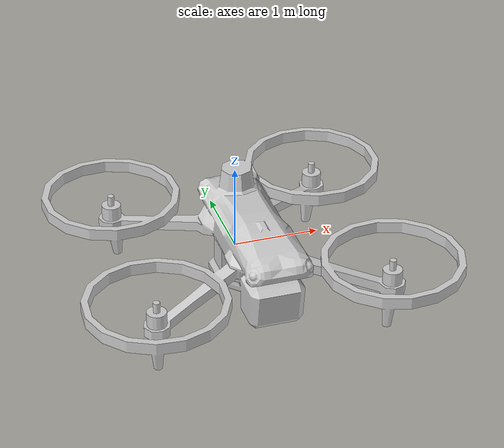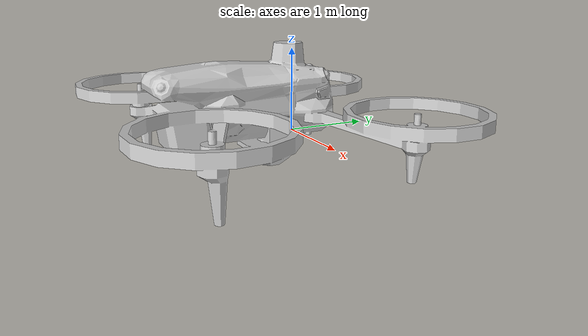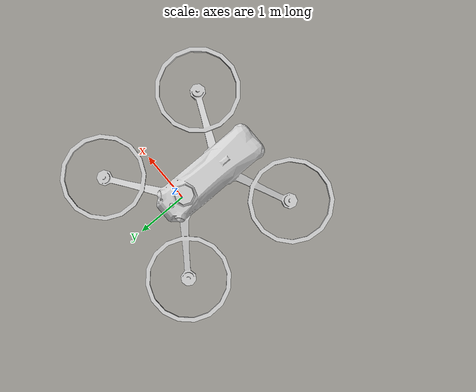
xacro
<?xml version="1.0"?>
<!--
  Robot: DJI_Matrice_4
  Generated by: LinkForge v1.5.1
  https://github.com/arounamounchili/linkforge
  Date: 2026-08-30 17:47:39
-->
<robot xmlns:xacro="http://ros.org/wiki/xacro" name="DJI_Matrice_4">
  <!-- Properties -->
  <xacro:include filename="DJI_Matrice_4_properties.xacro" />
  <!-- Materials -->
  <material name="Material">
    <color rgba="${material}" />
  </material>
  <!-- Links -->
  <link name="DJI_Matrice_4">
    <inertial>
      <origin xyz="0 0.085991 -0.087431" rpy="0 0 0" />
      <mass value="1.22" />
      <inertia ixx="0.203333" ixy="0" ixz="0" iyy="0.203333" iyz="0" izz="0.203333" />
    </inertial>
    <visual>
      <origin xyz="0 0.085991 -0.087321" rpy="0 0 0" />
      <geometry>
        <mesh filename="meshes\DJI_Matrice_4_visual.obj" />
      </geometry>
      <material name="Material" />
    </visual>
    <collision>
      <origin xyz="0 0.085991 -0.087431" rpy="0 0 0" />
      <geometry>
        <mesh filename="meshes\DJI_Matrice_4_collision.stl" />
      </geometry>
    </collision>
  </link>
  <gazebo reference="DJI_Matrice_4">
    <sensor name="Camera" type="camera">
      <always_on>true</always_on>
      <update_rate>30</update_rate>
      <visualize>false</visualize>
      <pose>0 -0.07884 -0.015791 0 0 0</pose>
      <camera>
        <horizontal_fov>1.047</horizontal_fov>
        <image>
          <width>640</width>
          <height>480</height>
          <format>R8G8B8</format>
        </image>
        <clip>
          <near>0.1</near>
          <far>100</far>
        </clip>
      </camera>
    </sensor>
  </gazebo>
  <gazebo reference="DJI_Matrice_4">
    <sensor name="Front_LIDAR" type="lidar">
      <always_on>true</always_on>
      <update_rate>30</update_rate>
      <visualize>false</visualize>
      <pose>0 -0.090113 0.01646 0 0 0</pose>
      <ray>
        <scan>
          <horizontal>
            <samples>640</samples>
            <resolution>1</resolution>
            <min_angle>-1.570796</min_angle>
            <max_angle>1.570796</max_angle>
          </horizontal>
        </scan>
        <range>
          <min>0.1</min>
          <max>10</max>
          <resolution>0.01</resolution>
        </range>
      </ray>
    </sensor>
  </gazebo>
  <gazebo reference="DJI_Matrice_4">
    <sensor name="Rear_LIDAR" type="lidar">
      <always_on>true</always_on>
      <update_rate>30</update_rate>
      <visualize>false</visualize>
      <pose>0 0.077828 0.022362 0 0 -3.141592</pose>
      <ray>
        <scan>
          <horizontal>
            <samples>640</samples>
            <resolution>1</resolution>
            <min_angle>-1.570796</min_angle>
            <max_angle>1.570796</max_angle>
          </horizontal>
        </scan>
        <range>
          <min>0.1</min>
          <max>10</max>
          <resolution>0.01</resolution>
        </range>
      </ray>
    </sensor>
  </gazebo>
  <gazebo reference="DJI_Matrice_4">
    <sensor name="_360_LIDAR" type="lidar">
      <always_on>true</always_on>
      <update_rate>60</update_rate>
      <visualize>false</visualize>
      <pose>0 0.006495 -0.051174 0.785398 0 0</pose>
      <ray>
        <scan>
          <horizontal>
            <samples>640</samples>
            <resolution>1</resolution>
            <min_angle>-1.570796</min_angle>
            <max_angle>1.570796</max_angle>
          </horizontal>
        </scan>
        <range>
          <min>0.1</min>
          <max>100</max>
          <resolution>0.01</resolution>
        </range>
      </ray>
    </sensor>
  </gazebo>
  <gazebo reference="DJI_Matrice_4">
    <sensor name="_360_Thermal" type="camera">
      <always_on>true</always_on>
      <update_rate>30</update_rate>
      <visualize>false</visualize>
      <pose>0 0.006489 -0.065246 0 0 0</pose>
      <camera>
        <horizontal_fov>3.124139</horizontal_fov>
        <image>
          <width>640</width>
          <height>480</height>
          <format>R8G8B8</format>
        </image>
        <clip>
          <near>0.1</near>
          <far>100</far>
        </clip>
      </camera>
    </sensor>
  </gazebo>
</robot>

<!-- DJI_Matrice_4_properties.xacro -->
<!--
  Robot: robot
  Generated by: LinkForge v1.5.1
  https://github.com/arounamounchili/linkforge
  Date: 2026-08-30 17:47:39
-->
<robot xmlns:xacro="http://ros.org/wiki/xacro">
  <!-- Properties -->
  <xacro:property name="material" value="0.8 0.8 0.8 1" />
</robot>
